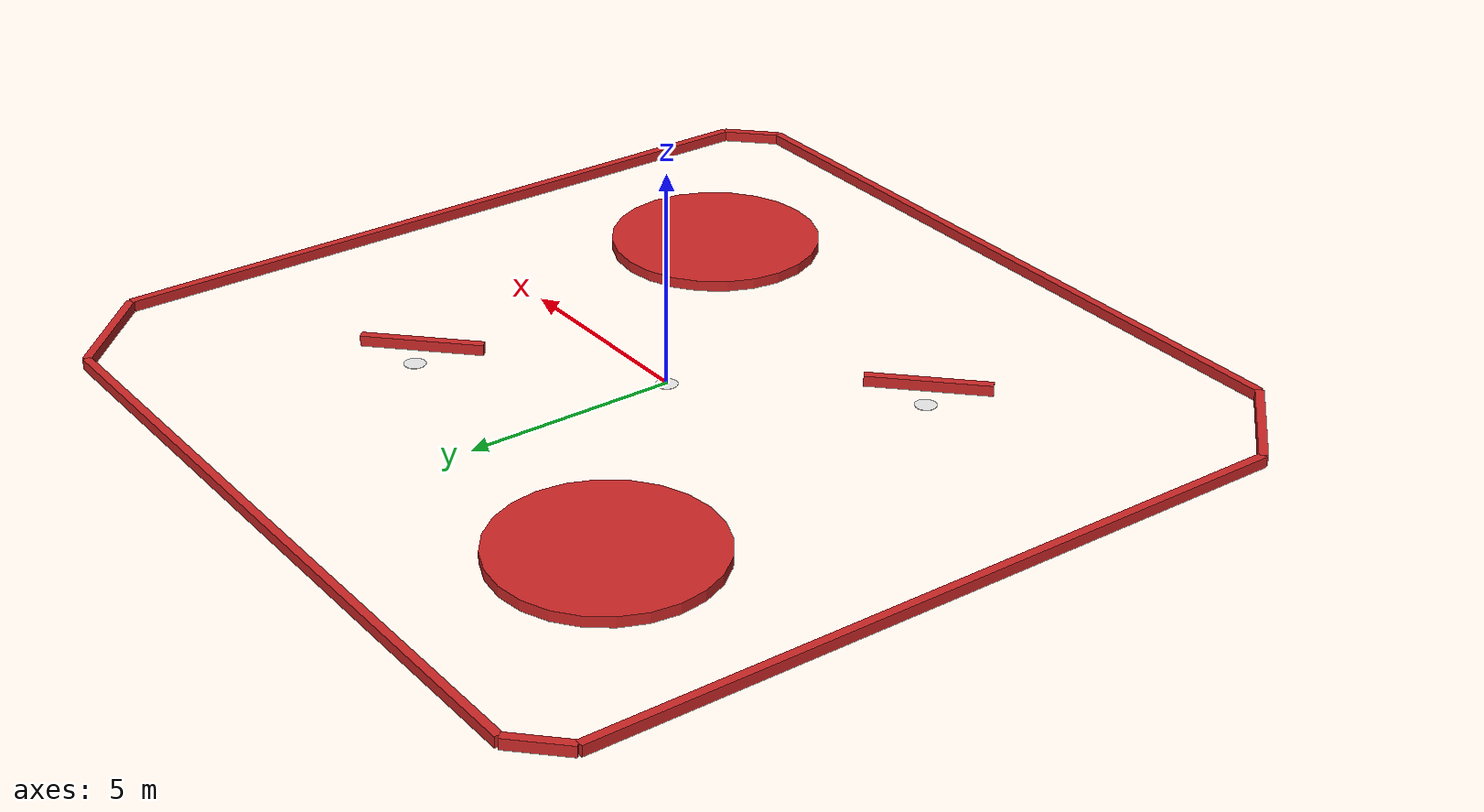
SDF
<?xml version='1.0'?>
<sdf version='1.4'>
  <model name='Wall'>
    <link name='Wall_1'>
      <collision name='Wall_1_Collision'>
        <geometry>
          <box>
            <size>17 0.2 0.24999</size>
          </box>
        </geometry>
        <pose>0 0 0.124999 0 -0 0</pose>
      </collision>
      <visual name='Wall_1_Visual'>
        <pose>0 0 0.124999 0 -0 0</pose>
        <geometry>
          <box>
            <size>17 0.2 0.24999</size>
          </box>
        </geometry>
        <material>
          <script>
            <uri>file://media/materials/scripts/gazebo.material</uri>
            <name>Gazebo/Red</name>
          </script>
        </material>
      </visual>
      <velocity_decay>
        <linear>0</linear>
        <angular>0</angular>
      </velocity_decay>
      <pose>-10 0.5 0 0 0 -1.5708</pose>
    </link>

    <link name='Wall_2'>
      <collision name='Wall_2_Collision'>
        <geometry>
          <box>
            <size>17 0.2 0.24999</size>
          </box>
        </geometry>
        <pose>0 0 0.124999 0 -0 0</pose>
      </collision>
      <visual name='Wall_2_Visual'>
        <pose>0 0 0.124999 0 -0 0</pose>
        <geometry>
          <box>
            <size>17 0.2 0.24999</size>
          </box>
         </geometry>
        <material>
          <script>
            <uri>file://media/materials/scripts/gazebo.material</uri>
            <name>Gazebo/Red</name>
          </script>
        </material>
      </visual>
      <velocity_decay>
        <linear>0</linear>
        <angular>0</angular>
      </velocity_decay>
      <pose>0.5 -10 0 0 0 0</pose>
    </link>

 <link name='Wall_3'>
      <collision name='Wall_3_Collision'>
        <geometry>
          <box>
            <size>17 0.2 0.24999</size>
          </box>
        </geometry>
        <pose>0 0 0.124999 0 -0 0</pose>
      </collision>
      <visual name='Wall_3_Visual'>
        <pose>0 0 0.124999 0 -0 0</pose>
        <geometry>
          <box>
            <size>17 0.2 0.24999</size>
          </box>
        </geometry>
        <material>
          <script>
            <uri>file://media/materials/scripts/gazebo.material</uri>
            <name>Gazebo/Red</name>
          </script>
        </material>
      </visual>
      <velocity_decay>
        <linear>0</linear>
        <angular>0</angular>
      </velocity_decay>
      <pose>10 -0.5 0 0 0 -1.5708</pose>
    </link>

    <link name='Wall_4'>
      <collision name='Wall_4_Collision'>
        <geometry>
          <box>
            <size>17 0.2 0.24999</size>
          </box>
        </geometry>
        <pose>0 0 0.124999 0 -0 0</pose>
      </collision>
      <visual name='Wall_4_Visual'>
        <pose>0 0 0.124999 0 -0 0</pose>
        <geometry>
          <box>
            <size>17 0.2 0.24999</size>
          </box>
        </geometry>
        <material>
          <script>
            <uri>file://media/materials/scripts/gazebo.material</uri>
            <name>Gazebo/Red</name>
          </script>
        </material>
      </visual>
      <velocity_decay>
        <linear>0</linear>
        <angular>0</angular>
      </velocity_decay>
      <pose>-0.5 10 0 0 0 0</pose>
    </link>

    <link name='Wall_5'>
      <collision name='Wall_5_Collision'>
        <geometry>
          <box>
            <size> 2.828427 0.2 0.24999</size>
          </box>
        </geometry>
        <pose>0 0 0.124999 0 -0 0</pose>
      </collision>
      <visual name='Wall_5_Visual'>
        <pose>0 0 0.124999 0 -0 0</pose>
        <geometry>
          <box>
            <size>2.828427 0.2 0.24999</size>
          </box>
        </geometry>
        <material>
          <script>
            <uri>file://media/materials/scripts/gazebo.material</uri>
            <name>Gazebo/Red</name>
          </script>
        </material>
      </visual>
      <velocity_decay>
        <linear>0</linear>
        <angular>0</angular>
      </velocity_decay>
      <pose>9 9 0 0 0 -0.78539</pose>
    </link>

    <link name='Wall_6'>
      <collision name='Wall_6_Collision'>
        <geometry>
          <box>
            <size> 2.828427 0.2 0.24999</size>
          </box>
        </geometry>
        <pose>0 0 0.124999 0 -0 0</pose>
      </collision>
      <visual name='Wall_6_Visual'>
        <pose>0 0 0.124999 0 -0 0</pose>
        <geometry>
          <box>
            <size>2.828427 0.2 0.24999</size>
          </box>
        </geometry>
        <material>
          <script>
            <uri>file://media/materials/scripts/gazebo.material</uri>
            <name>Gazebo/Red</name>
          </script>
        </material>
      </visual>
      <velocity_decay>
        <linear>0</linear>
        <angular>0</angular>
      </velocity_decay>
      <pose>-9 -9 0 0 0 -0.78539</pose>
    </link>
<link name='Wall_6'>
      <collision name='Wall_6_Collision'>
        <geometry>
          <box>
            <size> 2.828427 0.2 0.24999</size>
          </box>
        </geometry>
        <pose>0 0 0.124999 0 -0 0</pose>
      </collision>
      <visual name='Wall_6_Visual'>
        <pose>0 0 0.124999 0 -0 0</pose>
        <geometry>
          <box>
            <size>2.828427 0.2 0.24999</size>
          </box>
        </geometry>
        <material>
          <script>
            <uri>file://media/materials/scripts/gazebo.material</uri>
            <name>Gazebo/Red</name>
          </script>
        </material>
      </visual>
      <velocity_decay>
        <linear>0</linear>
        <angular>0</angular>
      </velocity_decay>
      <pose>-9 -9 0 0 0 -0.78539</pose>
    </link>

    <link name='Wall_7'>
      <collision name='Wall_7_Collision'>
        <geometry>
          <box>
            <size> 1.414215 0.2 0.24999</size>
          </box>
        </geometry>
        <pose>0 0 0.124999 0 -0 0</pose>
      </collision>
      <visual name='Wall_7_Visual'>
        <pose>0 0 0.124999 0 -0 0</pose>
        <geometry>
          <box>
            <size>1.414215 0.2 0.24999</size>
          </box>
        </geometry>
        <material>
          <script>
            <uri>file://media/materials/scripts/gazebo.material</uri>
            <name>Gazebo/Red</name>
          </script>
        </material>
      </visual>
      <velocity_decay>
        <linear>0</linear>
        <angular>0</angular>
      </velocity_decay>
      <pose>-9.5 9.5 0 0 0 0.78539</pose>
    </link>

    <link name='Wall_8'>
      <collision name='Wall_8_Collision'>
        <geometry>
          <box>
            <size> 1.414215 0.2 0.24999</size>
          </box>
        </geometry>
        <pose>0 0 0.124999 0 -0 0</pose>
      </collision>
      <visual name='Wall_7_Visual'>
        <pose>0 0 0.124999 0 -0 0</pose>
        <geometry>
          <box>
            <size>1.414215 0.2 0.24999</size>
          </box>
        </geometry>
        <material>
          <script>
            <uri>file://media/materials/scripts/gazebo.material</uri>
            <name>Gazebo/Red</name>
          </script>
        </material>
      </visual>
      <velocity_decay>
        <linear>0</linear>
        <angular>0</angular>
      </velocity_decay>
      <pose> 9.5 -9.5 0 0 0 0.78539</pose>
    </link>

<link name='Wall_9'>
      <collision name='Wall_9_Collision'>
        <geometry>
          <box>
            <size> 2.828430 0.2 0.24999</size>
          </box>
        </geometry>
        <pose>0 0 0.124999 0 -0 0</pose>
      </collision>
      <visual name='Wall_9_Visual'>
        <pose>0 0 0.124999 0 -0 0</pose>
        <geometry>
          <box>
            <size>2.828430 0.2 0.24999</size>
          </box>
        </geometry>
        <material>
          <script>
            <uri>file://media/materials/scripts/gazebo.material</uri>
            <name>Gazebo/Red</name>
          </script>
        </material>
      </visual>
      <velocity_decay>
        <linear>0</linear>
        <angular>0</angular>
      </velocity_decay>
      <pose>-3.5 -4.5 0 0 0 0.78539</pose>
    </link>

    <link name='Obstacle_1'>
      <collision name='Obstacle_1_Collision'>
        <geometry>
          <cylinder>
            <radius> 2.5 </radius>
	    <length> 0.24999 </length>
          </cylinder>
        </geometry>
        <pose>0 0 0.124999 0 -0 0</pose>
      </collision>
      <visual name='Obstacle_1_Visual'>
        <pose>0 0 0.124999 0 -0 0</pose>
        <geometry>
	  <cylinder>
            <radius> 2.5 </radius>
	    <length> 0.24999 </length>
          </cylinder>
	</geometry>
        <material>
          <script>
            <uri>file://media/materials/scripts/gazebo.material</uri>
            <name>Gazebo/Red</name>
          </script>
        </material>
      </visual>
      <velocity_decay>
        <linear>0</linear>
        <angular>0</angular>
      </velocity_decay>
      <pose> 5 -5 0 0 0 0</pose>
    </link>
    <link name='Obstacle_2'>
      <collision name='Obstacle_2_Collision'>
        <geometry>
          <cylinder>
            <radius> 2.5 </radius>
	    <length> 0.24999 </length>
          </cylinder>
        </geometry>
        <pose>0 0 0.124999 0 -0 0</pose>
      </collision>
      <visual name='Obstacle_2_Visual'>
        <pose>0 0 0.124999 0 -0 0</pose>
        <geometry>
	  <cylinder>
            <radius> 2.5 </radius>
	    <length> 0.24999 </length>
          </cylinder>
	</geometry>
        <material>
          <script>
            <uri>file://media/materials/scripts/gazebo.material</uri>
            <name>Gazebo/Red</name>
          </script>
        </material>
      </visual>
      <velocity_decay>
        <linear>0</linear>
        <angular>0</angular>
      </velocity_decay>
      <pose> -5 5 0 0 0 0</pose>
    </link>

<link name='Wall_10'>
      <collision name='Wall_10_Collision'>
        <geometry>
          <box>
            <size> 2.828430 0.2 0.24999</size>
          </box>
        </geometry>
        <pose>0 0 0.124999 0 -0 0</pose>
      </collision>
      <visual name='Wall_10_Visual'>
        <pose>0 0 0.124999 0 -0 0</pose>
        <geometry>
          <box>
            <size>2.828430 0.2 0.24999</size>
          </box>
        </geometry>
        <material>
          <script>
            <uri>file://media/materials/scripts/gazebo.material</uri>
            <name>Gazebo/Red</name>
          </script>
        </material>
      </visual>
      <velocity_decay>
        <linear>0</linear>
        <angular>0</angular>
      </velocity_decay>
      <pose> 4.5 3.5 0 0 0 0.78539</pose>
    </link>
    <link name='Target_1'>
      <collision name='Target_1_Collision'>
        <geometry>
          <cylinder>
	    <radius> 0.24999 </radius>
	    <length> 0.24999 </length>
	  </cylinder>
        </geometry>
        <pose>0 0 0.34999 0 -0 0</pose>
      </collision>
      <visual name='Target_1_Visual'>
        <pose>0 0 0 0 0 0</pose>
        <geometry>
         <cylinder>
            <radius> 0.24999 </radius>
	    <length> 0.01 </length>
          </cylinder>
	</geometry>
        <material>
          <script>
            <uri>file://media/materials/scripts/gazebo.material</uri>
            <name>Gazebo/White</name>
          </script>
        </material>
      </visual>
      <velocity_decay>
        <linear>0</linear>
        <angular>0</angular>
      </velocity_decay>
      <pose> 4 4 0 0 0 0</pose>
    </link>

 <link name='Target_2'>
      <collision name='Target2_Collision'>
        <geometry>
          <cylinder>
            <radius> 0.24999 </radius>
	    <length> 0.24999 </length>
          </cylinder>
        </geometry>
        <pose>0 0 0.34999 0 -0 0</pose>
      </collision>
      <visual name='Target_2_Visual'>
        <pose>0 0 0 0 0 0</pose>
        <geometry>
         <cylinder>
            <radius> 0.24999 </radius>
	    <length> 0.01 </length>
          </cylinder>
	</geometry>
        <material>
          <script>
            <uri>file://media/materials/scripts/gazebo.material</uri>
            <name>Gazebo/White</name>
          </script>
        </material>
      </visual>
      <velocity_decay>
        <linear>0</linear>
        <angular>0</angular>
      </velocity_decay>
      <pose> -4 -4 0 0 0 0</pose>
    </link>

    <link name='Target_3'>
      <collision name='Target2_Collision'>
        <geometry>
          <cylinder>
            <radius> 0.24999 </radius>
	    <length> 0.24999 </length>
          </cylinder>
        </geometry>
        <pose>0 0 0.34999 0 0 0</pose>
      </collision>
      <visual name='Target_2_Visual'>
        <pose>0 0 0 0 0 0</pose>
        <geometry>
         <cylinder>
            <radius> 0.24999 </radius>
	    <length> 0.01 </length>
          </cylinder>
	</geometry>
        <material>
          <script>
            <uri>file://media/materials/scripts/gazebo.material</uri>
            <name>Gazebo/White</name>
          </script>
        </material>
      </visual>
      <velocity_decay>
        <linear>0</linear>
        <angular>0</angular>
      </velocity_decay>
      <pose> 0 0 0 0 0 0</pose>
    </link>

    <static>1</static>
  </model>
</sdf>
